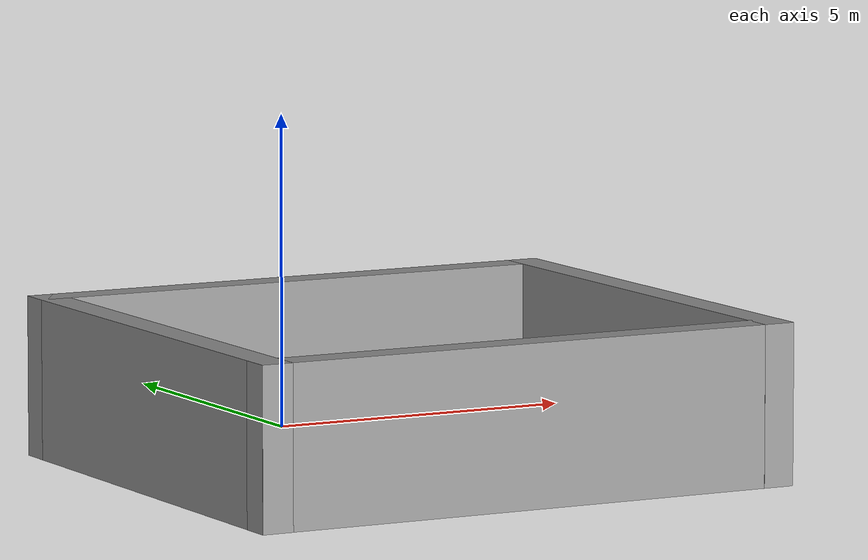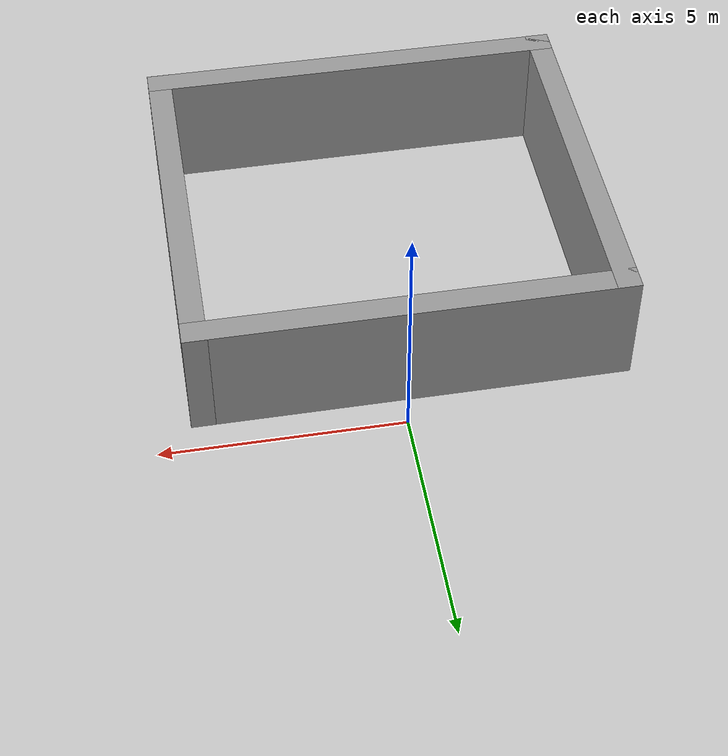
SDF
<?xml version='1.0'?>
<sdf version='1.4'>
  <model name='laser_model2'>
    <link name='Wall_0'>
      <collision name='Wall_0_Collision'>
        <geometry>
          <box>
            <size>9 0.5 2.5</size>
          </box>
        </geometry>
        <pose>0 0 1.25 0 -0 0</pose>
      </collision>
      <visual name='Wall_0_Visual'>
        <pose>0 0 1.25 0 -0 0</pose>
        <geometry>
          <box>
            <size>9 0.5 2.5</size>
          </box>
        </geometry>
        <material>
          <script>
            <uri>file://media/materials/scripts/gazebo.material</uri>
            <name>Gazebo/Grey</name>
          </script>
        </material>
      </visual>
      <velocity_decay>
        <linear>0</linear>
        <angular>0</angular>
      </velocity_decay>
      <pose>-0.22 -0.84 0 0 -0 0</pose>
    </link>
    <link name='Wall_2'>
      <collision name='Wall_2_Collision'>
        <geometry>
          <box>
            <size>8 0.5 2.5</size>
          </box>
        </geometry>
        <pose>0 0 1.25 0 -0 0</pose>
      </collision>
      <visual name='Wall_2_Visual'>
        <pose>0 0 1.25 0 -0 0</pose>
        <geometry>
          <box>
            <size>8 0.5 2.5</size>
          </box>
        </geometry>
        <material>
          <script>
            <uri>file://media/materials/scripts/gazebo.material</uri>
            <name>Gazebo/Grey</name>
          </script>
        </material>
      </visual>
      <velocity_decay>
        <linear>0</linear>
        <angular>0</angular>
      </velocity_decay>
      <pose>-4.46967 -4.59138 0 0 0 -1.5708</pose>
    </link>
    <link name='Wall_4'>
      <collision name='Wall_4_Collision'>
        <geometry>
          <box>
            <size>8 0.5 2.5</size>
          </box>
        </geometry>
        <pose>0 0 1.25 0 -0 0</pose>
      </collision>
      <visual name='Wall_4_Visual'>
        <pose>0 0 1.25 0 -0 0</pose>
        <geometry>
          <box>
            <size>8 0.5 2.5</size>
          </box>
        </geometry>
        <material>
          <script>
            <uri>file://media/materials/scripts/gazebo.material</uri>
            <name>Gazebo/Grey</name>
          </script>
        </material>
      </visual>
      <velocity_decay>
        <linear>0</linear>
        <angular>0</angular>
      </velocity_decay>
      <pose>4.02915 -4.5883 0 0 0 -1.5708</pose>
    </link>
    <link name='Wall_6'>
      <collision name='Wall_6_Collision'>
        <geometry>
          <box>
            <size>9 0.5 2.5</size>
          </box>
        </geometry>
        <pose>0 0 1.25 0 -0 0</pose>
      </collision>
      <visual name='Wall_6_Visual'>
        <pose>0 0 1.25 0 -0 0</pose>
        <geometry>
          <box>
            <size>9 0.5 2.5</size>
          </box>
        </geometry>
        <material>
          <script>
            <uri>file://media/materials/scripts/gazebo.material</uri>
            <name>Gazebo/Grey</name>
          </script>
        </material>
      </visual>
      <velocity_decay>
        <linear>0</linear>
        <angular>0</angular>
      </velocity_decay>
      <pose>-0.222422 -8.33642 0 0 -0 0</pose>
    </link>
    <static>1</static>
  </model>
</sdf>
